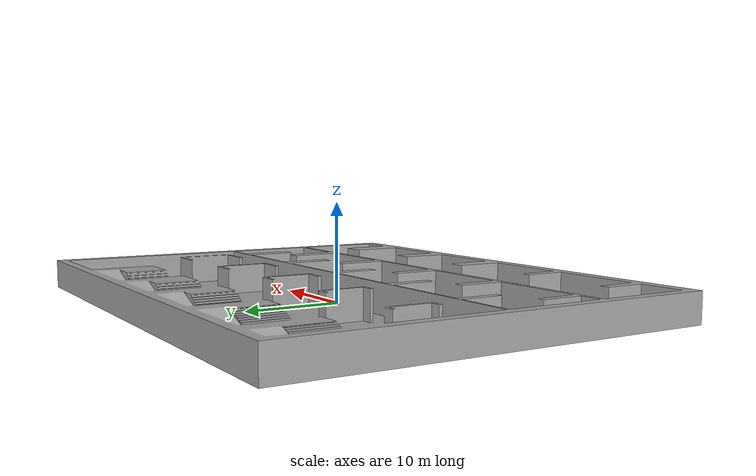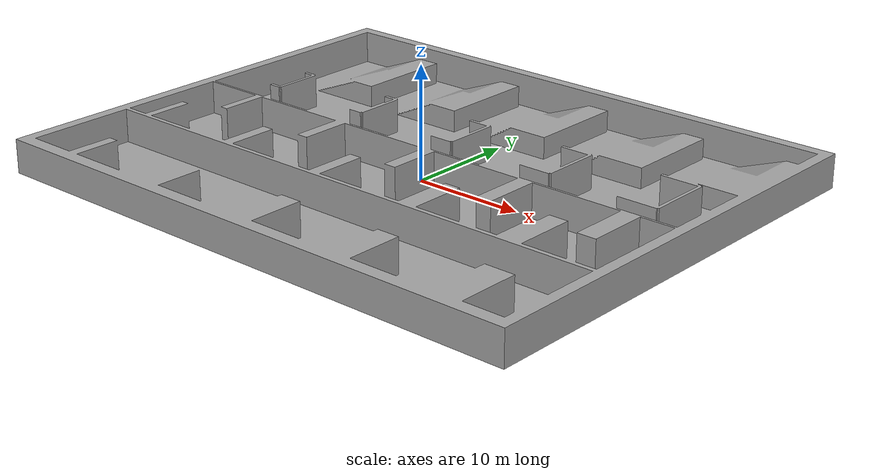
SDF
<?xml version="1.0"?>
<sdf version="1.6">
 <model name="ISAACLAB_TRAIN">
   <pose>0 0 0 0 0 0</pose>
   <static>true</static>
   <link name="link">
     <collision name="collision">
       <geometry>
         <mesh>
           <uri>model://ISAACLAB_TRAIN/meshes/ISAACLAB_TRAIN.dae</uri>
         </mesh>
       </geometry>
     </collision>
     <visual name="visual">
       <geometry>
         <mesh>
           <uri>model://ISAACLAB_TRAIN/meshes/ISAACLAB_TRAIN.dae</uri>
         </mesh>
       </geometry>
       <material>
         <ambient>0.10 0.10 0.10 1</ambient>
         <diffuse>0.65 0.65 0.65 1</diffuse>
         <specular>0.00 0.00 0.00 1</specular>
       </material>
     </visual>
   </link>
 </model>
</sdf>
